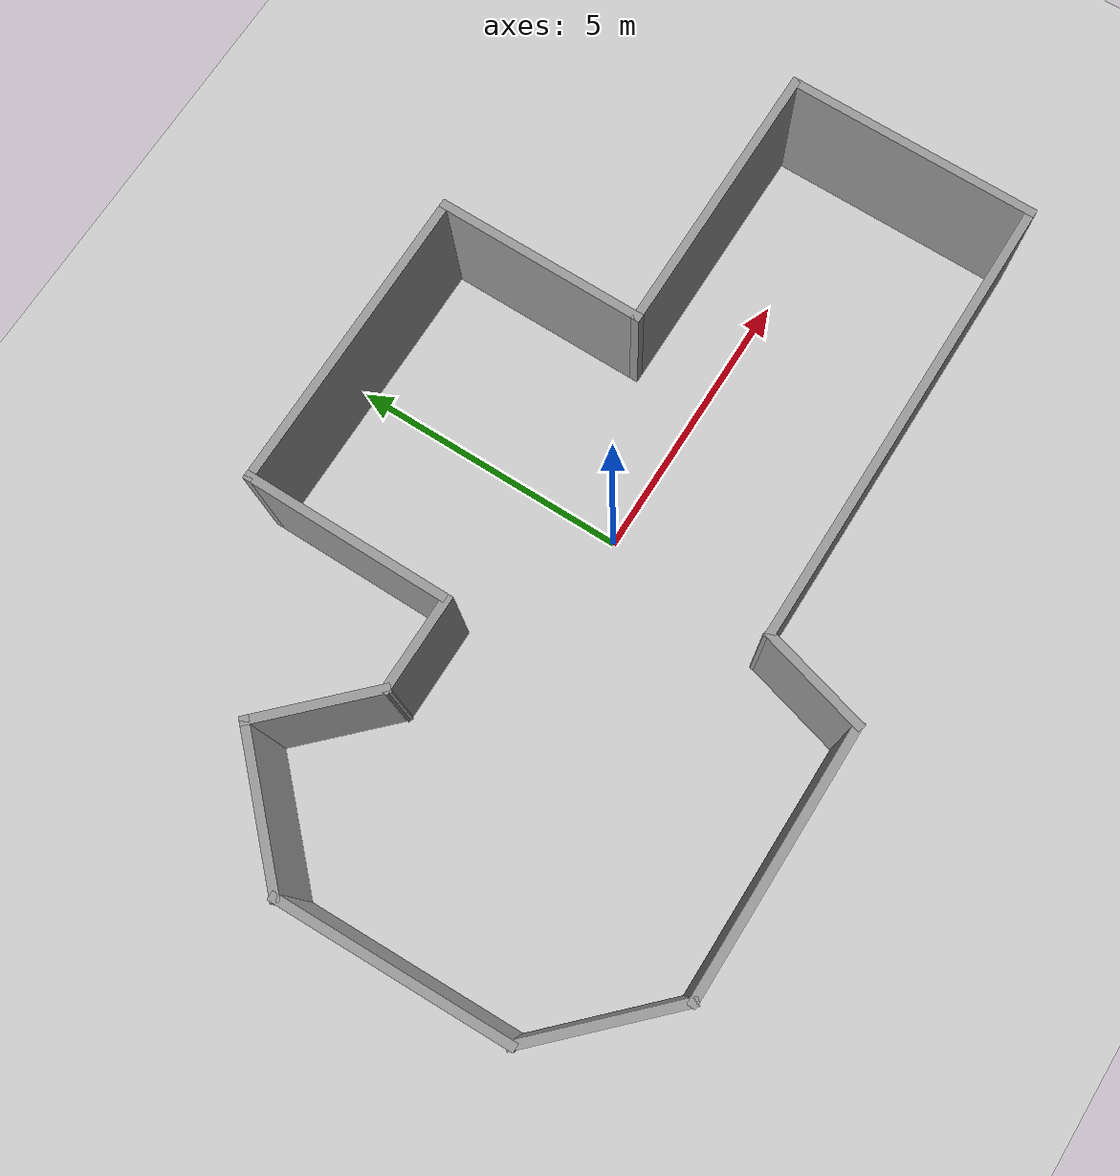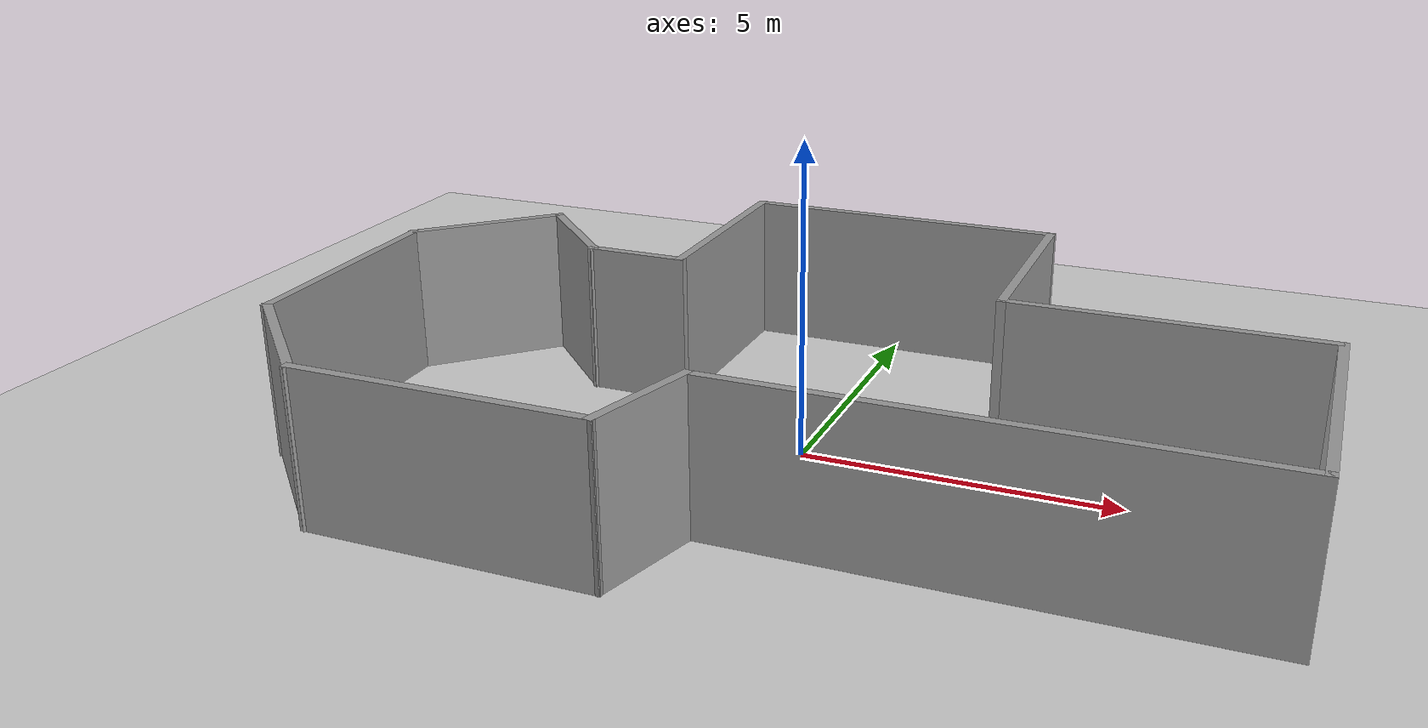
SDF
<sdf version="1.6">
 <world name="default">
  <light name="sun" type="directional">
   <pose>0 0 10 0 -0 0</pose>
   <diffuse>0.8 0.8 0.8 1</diffuse>
   <specular>0.2 0.2 0.2 1</specular>
   <attenuation>
    <range>1000</range>
    <constant>0.9</constant>
    <linear>0.01</linear>
    <quadratic>0.001</quadratic>
   </attenuation>
   <direction>-0.5 0.1 -0.9</direction>
  </light>
  <model name="ground_plane">
   <static>1</static>
   <link name="link">
    <collision name="collision">
     <geometry><plane><normal>0 0 1</normal><size>100 100</size></plane></geometry>
     <surface><friction><ode><mu>100</mu><mu2>50</mu2></ode></friction></surface>
    </collision>
    <visual name="visual">
     <cast_shadows>0</cast_shadows>
     <geometry><plane><normal>0 0 1</normal><size>100 100</size></plane></geometry>
     <material>
      <script><uri>file://media/materials/scripts/gazebo.material</uri><name>Gazebo/Grey</name></script>
     </material>
    </visual>
   </link>
  </model>
  <gravity>0 0 -9.8</gravity>
  <magnetic_field>6e-06 2.3e-05 -4.2e-05</magnetic_field>
  <atmosphere type="adiabatic"/>
  <physics name="default_physics" default="0" type="ode">
   <max_step_size>0.001</max_step_size>
   <real_time_factor>1</real_time_factor>
   <real_time_update_rate>1000</real_time_update_rate>
  </physics>
  <scene><ambient>0.4 0.4 0.4 1</ambient><background>0.7 0.7 0.7 1</background><shadows>1</shadows></scene>
  <spherical_coordinates>
   <surface_model>EARTH_WGS84</surface_model>
   <latitude_deg>0</latitude_deg>
   <longitude_deg>0</longitude_deg>
   <elevation>0</elevation>
   <heading_deg>0</heading_deg>
  </spherical_coordinates>
  <model name="closed_structure">
   <link name="Wall_1">
    <collision name="Wall_1_Collision">
     <geometry><box><size>2.75 0.15 2.5</size></box></geometry>
     <pose>0 0 1.25 0 -0 0</pose>
    </collision>
    <visual name="Wall_1_Visual">
     <pose>0 0 1.25 0 -0 0</pose>
     <geometry><box><size>2.75 0.15 2.5</size></box></geometry>
     <material>
      <script><uri>file://media/materials/scripts/gazebo.material</uri><name>Gazebo/Grey</name></script>
      <ambient>1 1 1 1</ambient>
     </material>
     <meta><layer>0</layer></meta>
    </visual>
    <pose>-6.52082 -3.93371 0 0 0 -0.785398</pose>
   </link>
   <link name="Wall_10">
    <collision name="Wall_10_Collision">
     <geometry><box><size>1.75 0.15 2.5</size></box></geometry>
     <pose>0 0 1.25 0 -0 0</pose>
    </collision>
    <visual name="Wall_10_Visual">
     <pose>0 0 1.25 0 -0 0</pose>
     <geometry><box><size>1.75 0.15 2.5</size></box></geometry>
     <material>
      <script><uri>file://media/materials/scripts/gazebo.material</uri><name>Gazebo/Grey</name></script>
      <ambient>1 1 1 1</ambient>
     </material>
     <meta><layer>0</layer></meta>
    </visual>
    <pose>-3.42277 1.28401 0 0 -0 3.14159</pose>
   </link>
   <link name="Wall_11">
    <collision name="Wall_11_Collision">
     <geometry><box><size>2.25 0.15 2.5</size></box></geometry>
     <pose>0 0 1.25 0 -0 0</pose>
    </collision>
    <visual name="Wall_11_Visual">
     <pose>0 0 1.25 0 -0 0</pose>
     <geometry><box><size>2.25 0.15 2.5</size></box></geometry>
     <material>
      <script><uri>file://media/materials/scripts/gazebo.material</uri><name>Gazebo/Grey</name></script>
      <ambient>1 1 1 1</ambient>
     </material>
     <meta><layer>0</layer></meta>
    </visual>
    <pose>-4.96523 2.02648 0 0 -0 2.35619</pose>
   </link>
   <link name="Wall_12">
    <collision name="Wall_12_Collision">
     <geometry><box><size>2.75 0.15 2.5</size></box></geometry>
     <pose>0 0 1.25 0 -0 0</pose>
    </collision>
    <visual name="Wall_12_Visual">
     <pose>0 0 1.25 0 -0 0</pose>
     <geometry><box><size>2.75 0.15 2.5</size></box></geometry>
     <material>
      <script><uri>file://media/materials/scripts/gazebo.material</uri><name>Gazebo/Grey</name></script>
      <ambient>1 1 1 1</ambient>
     </material>
     <meta><layer>0</layer></meta>
    </visual>
    <pose>-6.62693 1.8497 0 0 0 -2.35619</pose>
   </link>
   <link name="Wall_13">
    <collision name="Wall_13_Collision">
     <geometry><box><size>4.09636 0.15 2.5</size></box></geometry>
     <pose>0 0 1.25 0 -0 0</pose>
    </collision>
    <visual name="Wall_13_Visual">
     <pose>0 0 1.25 0 -0 0</pose>
     <geometry><box><size>4.09636 0.15 2.5</size></box></geometry>
     <material>
      <script><uri>file://media/materials/scripts/gazebo.material</uri><name>Gazebo/Grey</name></script>
      <ambient>1 1 1 1</ambient>
     </material>
     <meta><layer>0</layer></meta>
    </visual>
    <pose>-7.49311 -1.04201 0 0 0 -1.54391</pose>
   </link>
   <link name="Wall_2">
    <collision name="Wall_2_Collision">
     <geometry><box><size>4.75 0.15 2.5</size></box></geometry>
     <pose>0 0 1.25 0 -0 0</pose>
    </collision>
    <visual name="Wall_2_Visual">
     <pose>0 0 1.25 0 -0 0</pose>
     <geometry><box><size>4.75 0.15 2.5</size></box></geometry>
     <material>
      <script><uri>file://media/materials/scripts/gazebo.material</uri><name>Gazebo/Grey</name></script>
      <ambient>1 1 1 1</ambient>
     </material>
     <meta><layer>0</layer></meta>
    </visual>
    <pose>-3.30158 -4.85295 0 0 -0 0</pose>
   </link>
   <link name="Wall_3">
    <collision name="Wall_3_Collision">
     <geometry><box><size>2 0.15 2.5</size></box></geometry>
     <pose>0 0 1.25 0 -0 0</pose>
    </collision>
    <visual name="Wall_3_Visual">
     <pose>0 0 1.25 0 -0 0</pose>
     <geometry><box><size>2 0.15 2.5</size></box></geometry>
     <material>
      <script><uri>file://media/materials/scripts/gazebo.material</uri><name>Gazebo/Grey</name></script>
      <ambient>1 1 1 1</ambient>
     </material>
     <meta><layer>0</layer></meta>
    </visual>
    <pose>-0.762174 -3.95947 0 0 -0 1.309</pose>
   </link>
   <link name="Wall_4">
    <collision name="Wall_4_Collision">
     <geometry><box><size>8.25 0.15 2.5</size></box></geometry>
     <pose>0 0 1.25 0 -0 0</pose>
    </collision>
    <visual name="Wall_4_Visual">
     <pose>0 0 1.25 0 -0 0</pose>
     <geometry><box><size>8.25 0.15 2.5</size></box></geometry>
     <material>
      <script><uri>file://media/materials/scripts/gazebo.material</uri><name>Gazebo/Grey</name></script>
      <ambient>1 1 1 1</ambient>
     </material>
     <meta><layer>0</layer></meta>
    </visual>
    <pose>3.52723 -3.06599 0 0 -0 0</pose>
   </link>
   <link name="Wall_5">
    <collision name="Wall_5_Collision">
     <geometry><box><size>4.5 0.15 2.5</size></box></geometry>
     <pose>0 0 1.25 0 -0 0</pose>
    </collision>
    <visual name="Wall_5_Visual">
     <pose>0 0 1.25 0 -0 0</pose>
     <geometry><box><size>4.5 0.15 2.5</size></box></geometry>
     <material>
      <script><uri>file://media/materials/scripts/gazebo.material</uri><name>Gazebo/Grey</name></script>
      <ambient>1 1 1 1</ambient>
     </material>
     <meta><layer>0</layer></meta>
    </visual>
    <pose>7.57723 -0.890985 0 0 -0 1.5708</pose>
   </link>
   <link name="Wall_6">
    <collision name="Wall_6_Collision">
     <geometry><box><size>5 0.15 2.5</size></box></geometry>
     <pose>0 0 1.25 0 -0 0</pose>
    </collision>
    <visual name="Wall_6_Visual">
     <pose>0 0 1.25 0 -0 0</pose>
     <geometry><box><size>5 0.15 2.5</size></box></geometry>
     <material>
      <script><uri>file://media/materials/scripts/gazebo.material</uri><name>Gazebo/Grey</name></script>
      <ambient>1 1 1 1</ambient>
     </material>
     <meta><layer>0</layer></meta>
    </visual>
    <pose>5.15223 1.28401 0 0 -0 3.14159</pose>
   </link>
   <link name="Wall_7">
    <collision name="Wall_7_Collision">
     <geometry><box><size>3.75 0.15 2.5</size></box></geometry>
     <pose>0 0 1.25 0 -0 0</pose>
    </collision>
    <visual name="Wall_7_Visual">
     <pose>0 0 1.25 0 -0 0</pose>
     <geometry><box><size>3.75 0.15 2.5</size></box></geometry>
     <material>
      <script><uri>file://media/materials/scripts/gazebo.material</uri><name>Gazebo/Grey</name></script>
      <ambient>1 1 1 1</ambient>
     </material>
     <meta><layer>0</layer></meta>
    </visual>
    <pose>2.72723 3.08401 0 0 -0 1.5708</pose>
   </link>
   <link name="Wall_8">
    <collision name="Wall_8_Collision">
     <geometry><box><size>5.5 0.15 2.5</size></box></geometry>
     <pose>0 0 1.25 0 -0 0</pose>
    </collision>
    <visual name="Wall_8_Visual">
     <pose>0 0 1.25 0 -0 0</pose>
     <geometry><box><size>5.5 0.15 2.5</size></box></geometry>
     <material>
      <script><uri>file://media/materials/scripts/gazebo.material</uri><name>Gazebo/Grey</name></script>
      <ambient>1 1 1 1</ambient>
     </material>
     <meta><layer>0</layer></meta>
    </visual>
    <pose>0.052234 4.88401 0 0 -0 3.14159</pose>
   </link>
   <link name="Wall_9">
    <collision name="Wall_9_Collision">
     <geometry><box><size>3.75 0.15 2.5</size></box></geometry>
     <pose>0 0 1.25 0 -0 0</pose>
    </collision>
    <visual name="Wall_9_Visual">
     <pose>0 0 1.25 0 -0 0</pose>
     <geometry><box><size>3.75 0.15 2.5</size></box></geometry>
     <material>
      <script><uri>file://media/materials/scripts/gazebo.material</uri><name>Gazebo/Grey</name></script>
      <ambient>1 1 1 1</ambient>
     </material>
     <meta><layer>0</layer></meta>
    </visual>
    <pose>-2.62277 3.08401 0 0 0 -1.5708</pose>
   </link>
   <static>1</static>
  </model>
 </world>
</sdf>
